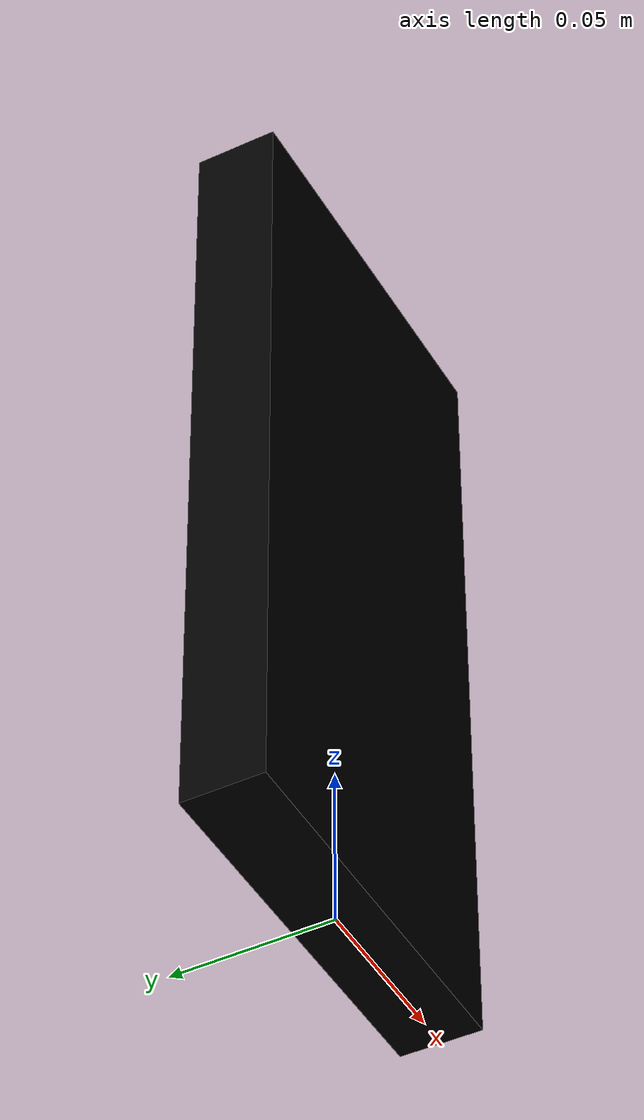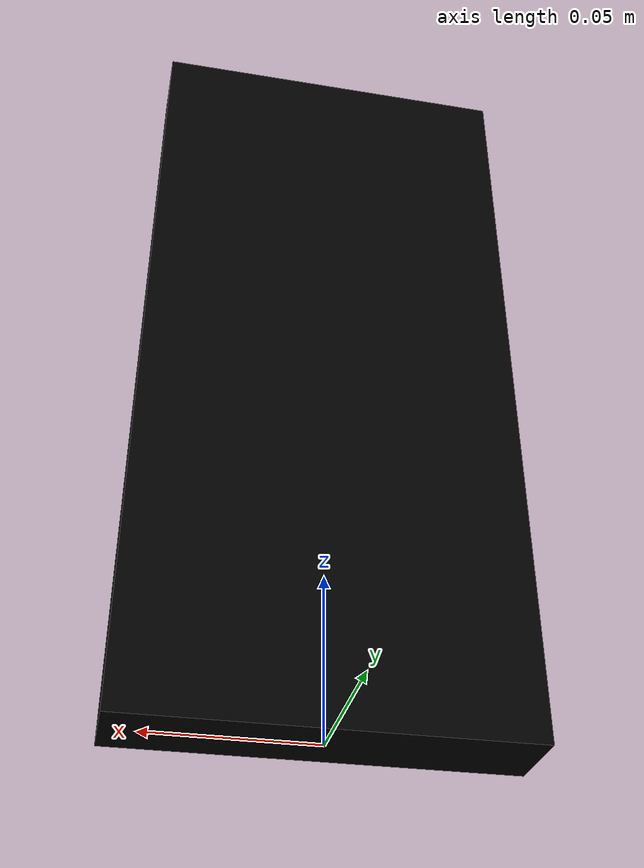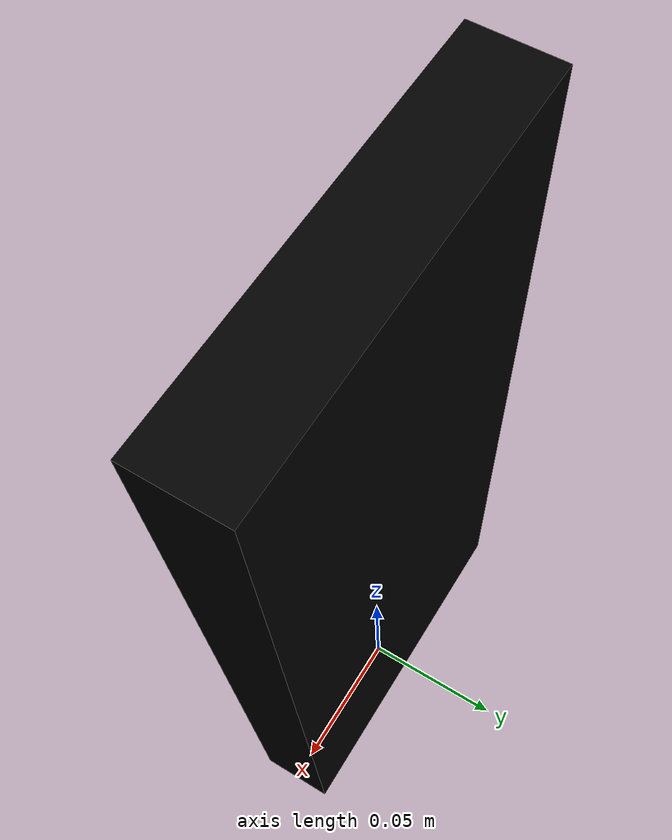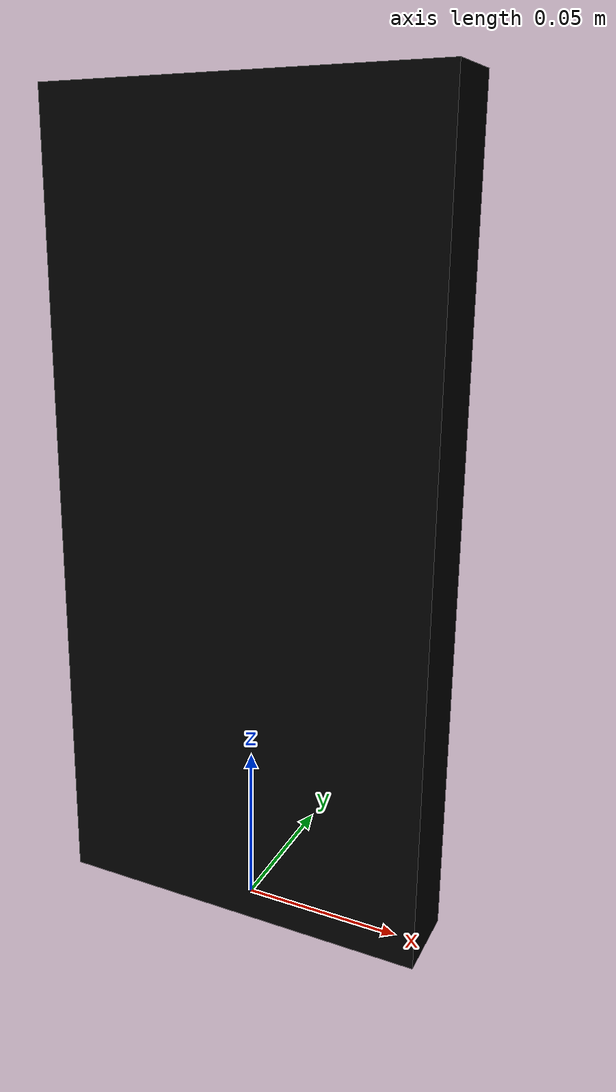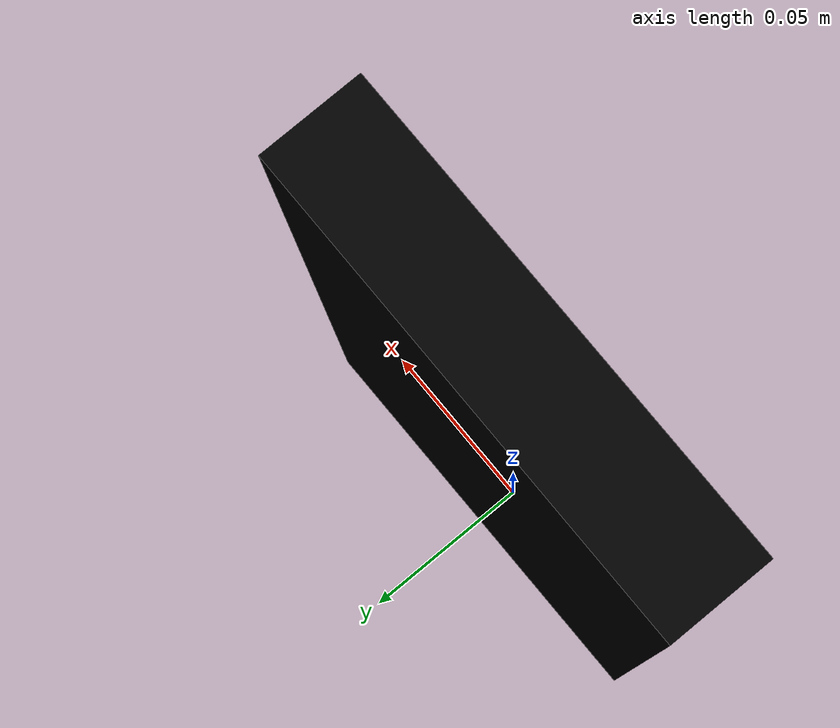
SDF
<?xml version='1.0'?>
<sdf version="1.9">
  <model name="traffic_light">

    <joint name="world_fixed" type="fixed">
      <parent>world</parent>
      <child>light_base</child>
    </joint>

    <link name="light_base">
      <pose>0 0 0.125 0 0 0</pose>
      <inertial>
        <mass>0.1</mass>
        <inertia>
          <ixx>1e-4</ixx>
          <iyy>1e-4</iyy>
          <izz>1e-4</izz>
          <ixy>0</ixy>
          <ixz>0</ixz>
          <iyz>0</iyz>
        </inertia>
      </inertial>

      <visual name="base_black">
        <geometry>
          <box>
            <size>0.12 0.025 0.25</size>
          </box>
        </geometry>
        <material>
          <ambient>0 0 0 1</ambient>
          <diffuse>0 0 0 1</diffuse>
          <specular>0.1 0.1 0.1 1</specular>
        </material>
      </visual>

      <collision name="base_collision">
        <geometry>
          <box>
            <size>0.12 0.025 0.25</size>
          </box>
        </geometry>
      </collision>
    </link>

    <link name="red_slide">
      <pose>0 0 0.125 0 0 0</pose>
      <inertial>
        <mass>0.01</mass>
        <inertia>
          <ixx>1e-5</ixx>
          <iyy>1e-5</iyy>
          <izz>1e-5</izz>
          <ixy>0</ixy>
          <ixz>0</ixz>
          <iyz>0</iyz>
        </inertia>
      </inertial>
      <visual name="red_v">
        <geometry>
          <box>
            <size>0.119 0.001 0.249</size>
          </box>
        </geometry>
        <material>
          <ambient>1 1 1 1</ambient>
          <diffuse>1 1 1 1</diffuse>
          <pbr>
            <metal>
              <albedo_map>model://turtlebot3_autorace/traffic_light/materials/textures/traffic_light_red.png</albedo_map>
            </metal>
          </pbr>
        </material>
      </visual>
      <collision name="red_collision">
        <geometry>
          <box>
            <size>0.119 0.001 0.249</size>
          </box>
        </geometry>
      </collision>
    </link>

    <link name="yellow_slide">
      <pose>0 0 0.125 0 0 0</pose>
      <inertial>
        <mass>0.01</mass>
        <inertia>
          <ixx>1e-5</ixx>
          <iyy>1e-5</iyy>
          <izz>1e-5</izz>
          <ixy>0</ixy>
          <ixz>0</ixz>
          <iyz>0</iyz>
        </inertia>
      </inertial>
      <visual name="yel_v">
        <geometry>
          <box>
            <size>0.119 0.001 0.249</size>
          </box>
        </geometry>
        <material>
          <ambient>1 1 1 1</ambient>
          <diffuse>1 1 1 1</diffuse>
          <pbr>
            <metal>
              <albedo_map>model://turtlebot3_autorace/traffic_light/materials/textures/traffic_light_yellow.png</albedo_map>
            </metal>
          </pbr>
        </material>
      </visual>
      <collision name="yellow_collision">
        <geometry>
          <box>
            <size>0.119 0.001 0.249</size>
          </box>
        </geometry>
      </collision>
    </link>

    <link name="green_slide">
      <pose>0 0 0.125 0 0 0</pose>
      <inertial>
        <mass>0.01</mass>
        <inertia>
          <ixx>1e-5</ixx>
          <iyy>1e-5</iyy>
          <izz>1e-5</izz>
          <ixy>0</ixy>
          <ixz>0</ixz>
          <iyz>0</iyz>
        </inertia>
      </inertial>
      <visual name="grn_v">
        <geometry>
          <box>
            <size>0.119 0.001 0.249</size>
          </box>
        </geometry>
        <material>
          <ambient>1 1 1 1</ambient>
          <diffuse>1 1 1 1</diffuse>
          <pbr>
            <metal>
              <albedo_map>model://turtlebot3_autorace/traffic_light/materials/textures/traffic_light_green.png</albedo_map>
            </metal>
          </pbr>
        </material>
      </visual>
      <collision name="green_collision">
        <geometry>
          <box>
            <size>0.119 0.001 0.249</size>
          </box>
        </geometry>
      </collision>
    </link>

    <joint name="red_joint" type="prismatic">
      <parent>light_base</parent>
      <child>red_slide</child>
      <axis>
        <xyz>0 1 0</xyz>
        <limit>
          <lower>-0.015</lower>
          <upper>0</upper>
        </limit>
      </axis>
    </joint>

    <joint name="yellow_joint" type="prismatic">
      <parent>light_base</parent>
      <child>yellow_slide</child>
      <axis>
        <xyz>0 1 0</xyz>
        <limit>
          <lower>-0.016</lower>
          <upper>0</upper>
        </limit>
      </axis>
    </joint>

    <joint name="green_joint" type="prismatic">
      <parent>light_base</parent>
      <child>green_slide</child>
      <axis>
        <xyz>0 1 0</xyz>
        <limit>
          <lower>-0.017</lower>
          <upper>0</upper>
        </limit>
      </axis>
    </joint>

    <plugin
      filename="libtraffic_light_plugin.so"
      name="turtlebot3_gazebo::TrafficLightPlugin">
      <red_duration>3.0</red_duration>
      <yellow_duration>3.0</yellow_duration>
      <green_duration>3.0</green_duration>
    </plugin>

  </model>
</sdf>
